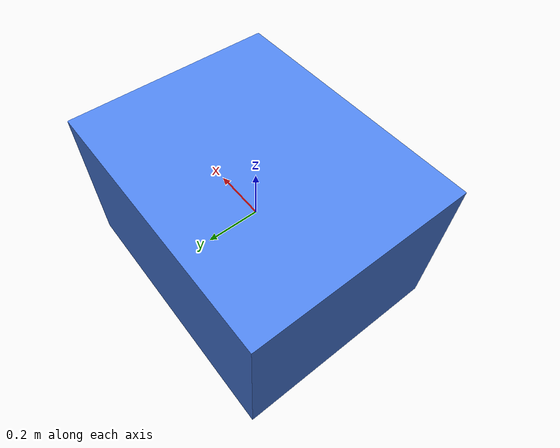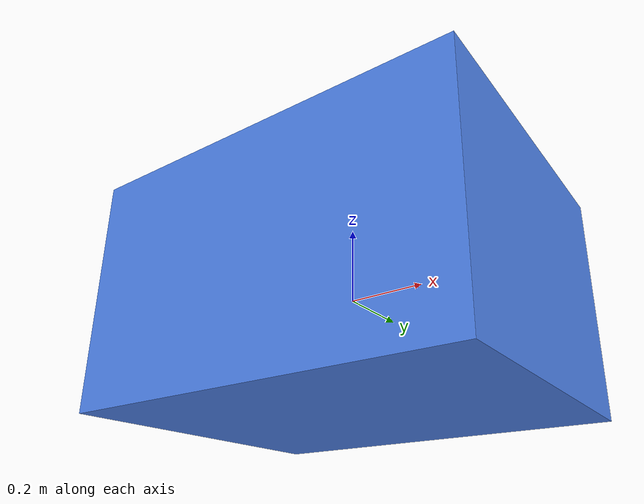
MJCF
<mujoco model="single_body_orbit">
  <compiler angle="radian"/>
  <option timestep="1.0" gravity="0 0 0">
    <flag contact="disable"/>
  </option>

  <worldbody>
    <body name="spacecraft" pos="0 0 0">
      <freejoint name="spacecraft_free"/>
      <inertial pos="0 0 0" mass="100" diaginertia="20 22 25"/>
      <geom type="box" size="0.5 0.4 0.3" mass="0" rgba="0.3 0.5 0.9 1"/>
    </body>
  </worldbody>
</mujoco>
